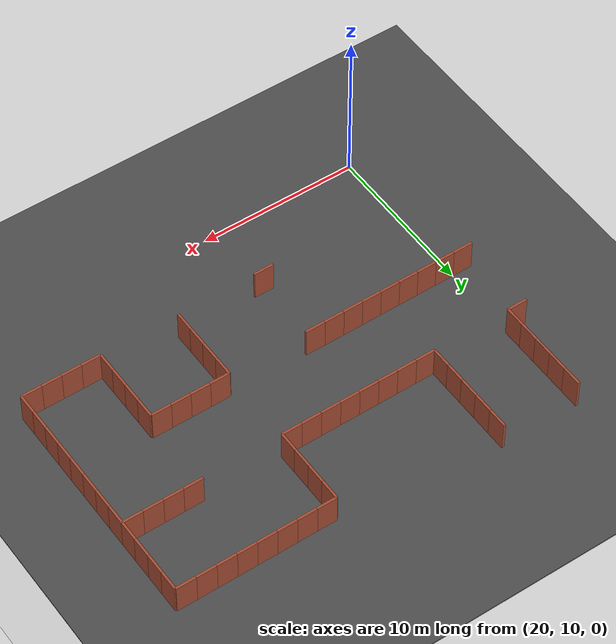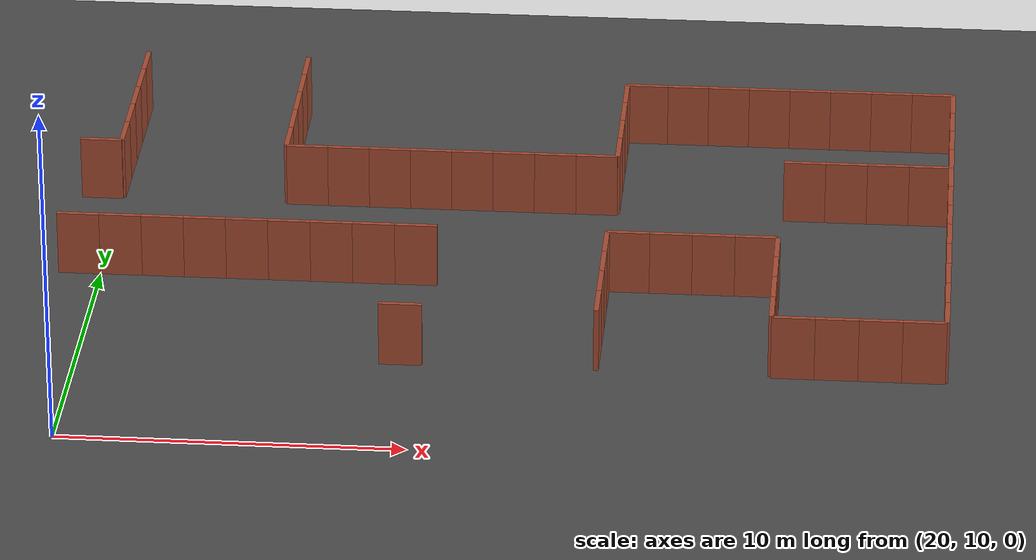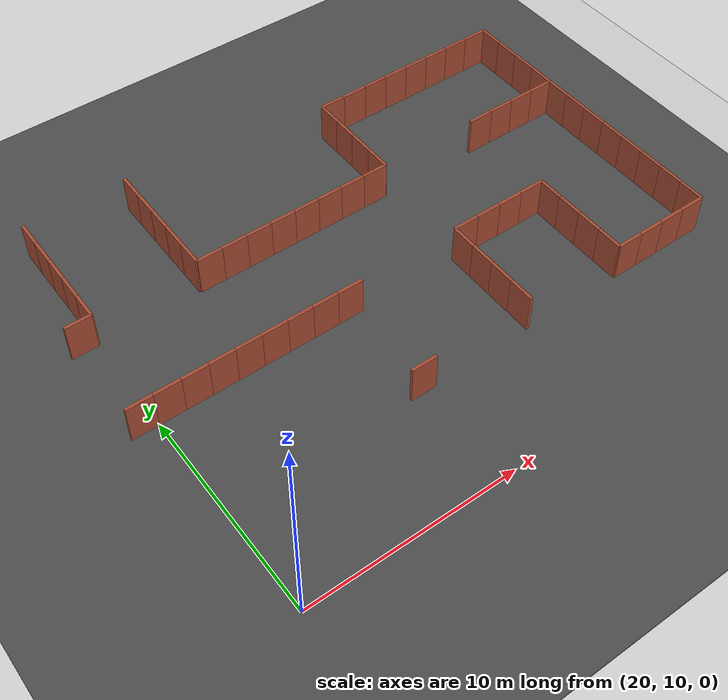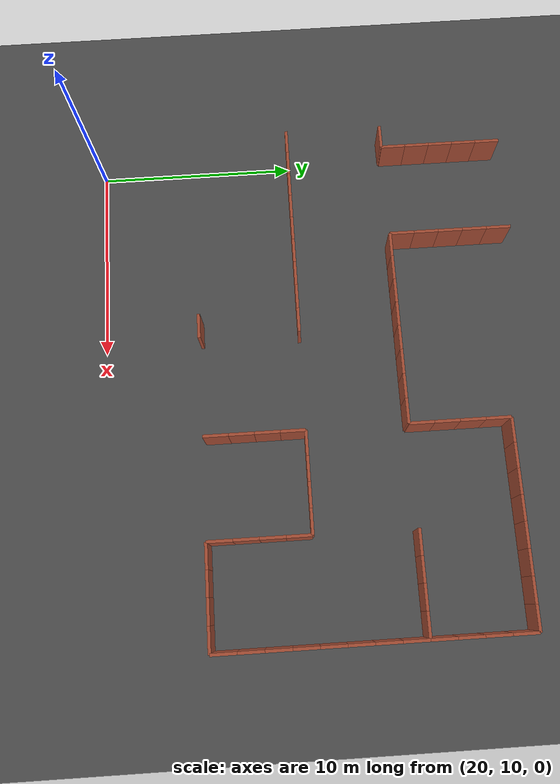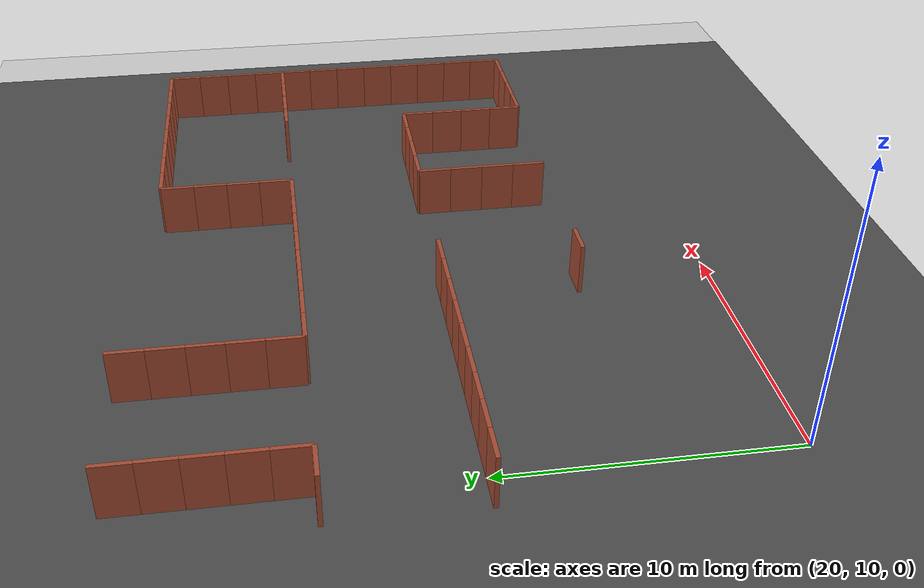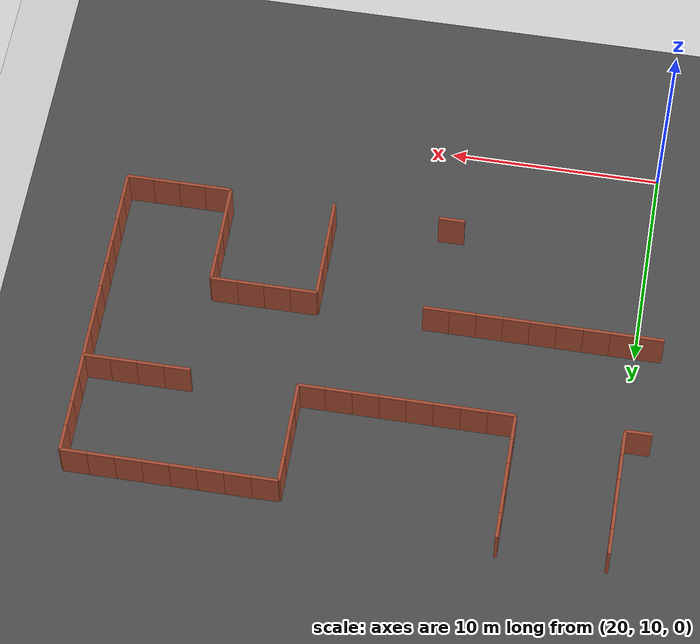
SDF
<sdf version="1.6">
 <world name="default">
  <model name="ground_plane">
   <static>1</static>
   <link name="link">
    <collision name="collision">
     <geometry><plane><normal>0 0 1</normal><size>100 100</size></plane></geometry>
     <surface><friction><ode><mu>100</mu><mu2>50</mu2></ode></friction></surface>
    </collision>
    <visual name="visual">
     <cast_shadows>0</cast_shadows>
     <geometry><plane><normal>0 0 1</normal><size>100 100</size></plane></geometry>
     <material>
      <script><uri>file://media/materials/scripts/gazebo.material</uri><name>Gazebo/Grey</name></script>
     </material>
    </visual>
   </link>
  </model>
  <model name="asphalt_plane">
   <static>1</static>
   <link name="link">
    <collision name="collision"><geometry><box><size>100 100 0.1</size></box></geometry></collision>
    <visual name="visual">
     <cast_shadows>0</cast_shadows>
     <geometry><box><size>100 100 0.1</size></box></geometry>
     <material>
      <script>
       <uri>model://asphalt_plane/materials/scripts</uri>
       <uri>model://asphalt_plane/materials/textures</uri>
       <name>vrc/asphalt</name>
      </script>
     </material>
    </visual>
   </link>
  </model>
  <model name="brick_wall_28_28_vertical1">
   <pose>20.625 20 0 0 -0 0</pose>
   <link name="Wall_0">
    <collision name="Wall_0_Collision">
     <geometry><box><size>1.25 0.15 2</size></box></geometry>
     <pose>0 0 1 0 -0 0</pose>
    </collision>
    <visual name="Wall_0_Visual">
     <pose>0 0 1 0 -0 0</pose>
     <geometry><box><size>1.25 0.15 2</size></box></geometry>
     <material>
      <script><uri>file://media/materials/scripts/gazebo.material</uri><name>Gazebo/Bricks</name></script>
      <ambient>1 1 1 1</ambient>
     </material>
     <meta><layer>0</layer></meta>
    </visual>
   </link>
   <static>1</static>
  </model>
  <model name="brick_wall_28_28_vertical2">
   <pose>19.375 20 0 0 -0 0</pose>
   <link name="Wall_0">
    <collision name="Wall_0_Collision">
     <geometry><box><size>1.25 0.15 2</size></box></geometry>
     <pose>0 0 1 0 -0 0</pose>
    </collision>
    <visual name="Wall_0_Visual">
     <pose>0 0 1 0 -0 0</pose>
     <geometry><box><size>1.25 0.15 2</size></box></geometry>
     <material>
      <script><uri>file://media/materials/scripts/gazebo.material</uri><name>Gazebo/Bricks</name></script>
      <ambient>1 1 1 1</ambient>
     </material>
     <meta><layer>0</layer></meta>
    </visual>
   </link>
   <static>1</static>
  </model>
  <model name="brick_wall_28_30_vertical2">
   <pose>19.375 25 0 0 -0 0</pose>
   <link name="Wall_0">
    <collision name="Wall_0_Collision">
     <geometry><box><size>1.25 0.15 2</size></box></geometry>
     <pose>0 0 1 0 -0 0</pose>
    </collision>
    <visual name="Wall_0_Visual">
     <pose>0 0 1 0 -0 0</pose>
     <geometry><box><size>1.25 0.15 2</size></box></geometry>
     <material>
      <script><uri>file://media/materials/scripts/gazebo.material</uri><name>Gazebo/Bricks</name></script>
      <ambient>1 1 1 1</ambient>
     </material>
     <meta><layer>0</layer></meta>
    </visual>
   </link>
   <static>1</static>
  </model>
  <model name="brick_wall_28_30_horizontal1">
   <pose>20 25.625 0 0 -0 1.5708</pose>
   <link name="Wall_0">
    <collision name="Wall_0_Collision">
     <geometry><box><size>1.25 0.15 2</size></box></geometry>
     <pose>0 0 1 0 -0 0</pose>
    </collision>
    <visual name="Wall_0_Visual">
     <pose>0 0 1 0 -0 0</pose>
     <geometry><box><size>1.25 0.15 2</size></box></geometry>
     <material>
      <script><uri>file://media/materials/scripts/gazebo.material</uri><name>Gazebo/Bricks</name></script>
      <ambient>1 1 1 1</ambient>
     </material>
     <meta><layer>0</layer></meta>
    </visual>
   </link>
   <static>1</static>
  </model>
  <model name="brick_wall_28_31_horizontal1">
   <pose>20 28.125 0 0 -0 1.5708</pose>
   <link name="Wall_0">
    <collision name="Wall_0_Collision">
     <geometry><box><size>1.25 0.15 2</size></box></geometry>
     <pose>0 0 1 0 -0 0</pose>
    </collision>
    <visual name="Wall_0_Visual">
     <pose>0 0 1 0 -0 0</pose>
     <geometry><box><size>1.25 0.15 2</size></box></geometry>
     <material>
      <script><uri>file://media/materials/scripts/gazebo.material</uri><name>Gazebo/Bricks</name></script>
      <ambient>1 1 1 1</ambient>
     </material>
     <meta><layer>0</layer></meta>
    </visual>
   </link>
   <static>1</static>
  </model>
  <model name="brick_wall_28_31_horizontal2">
   <pose>20 26.875 0 0 -0 1.5708</pose>
   <link name="Wall_0">
    <collision name="Wall_0_Collision">
     <geometry><box><size>1.25 0.15 2</size></box></geometry>
     <pose>0 0 1 0 -0 0</pose>
    </collision>
    <visual name="Wall_0_Visual">
     <pose>0 0 1 0 -0 0</pose>
     <geometry><box><size>1.25 0.15 2</size></box></geometry>
     <material>
      <script><uri>file://media/materials/scripts/gazebo.material</uri><name>Gazebo/Bricks</name></script>
      <ambient>1 1 1 1</ambient>
     </material>
     <meta><layer>0</layer></meta>
    </visual>
   </link>
   <static>1</static>
  </model>
  <model name="brick_wall_28_32_horizontal1">
   <pose>20 30.625 0 0 -0 1.5708</pose>
   <link name="Wall_0">
    <collision name="Wall_0_Collision">
     <geometry><box><size>1.25 0.15 2</size></box></geometry>
     <pose>0 0 1 0 -0 0</pose>
    </collision>
    <visual name="Wall_0_Visual">
     <pose>0 0 1 0 -0 0</pose>
     <geometry><box><size>1.25 0.15 2</size></box></geometry>
     <material>
      <script><uri>file://media/materials/scripts/gazebo.material</uri><name>Gazebo/Bricks</name></script>
      <ambient>1 1 1 1</ambient>
     </material>
     <meta><layer>0</layer></meta>
    </visual>
   </link>
   <static>1</static>
  </model>
  <model name="brick_wall_28_32_horizontal2">
   <pose>20 29.375 0 0 -0 1.5708</pose>
   <link name="Wall_0">
    <collision name="Wall_0_Collision">
     <geometry><box><size>1.25 0.15 2</size></box></geometry>
     <pose>0 0 1 0 -0 0</pose>
    </collision>
    <visual name="Wall_0_Visual">
     <pose>0 0 1 0 -0 0</pose>
     <geometry><box><size>1.25 0.15 2</size></box></geometry>
     <material>
      <script><uri>file://media/materials/scripts/gazebo.material</uri><name>Gazebo/Bricks</name></script>
      <ambient>1 1 1 1</ambient>
     </material>
     <meta><layer>0</layer></meta>
    </visual>
   </link>
   <static>1</static>
  </model>
  <model name="brick_wall_29_28_vertical1">
   <pose>23.125 20 0 0 -0 0</pose>
   <link name="Wall_0">
    <collision name="Wall_0_Collision">
     <geometry><box><size>1.25 0.15 2</size></box></geometry>
     <pose>0 0 1 0 -0 0</pose>
    </collision>
    <visual name="Wall_0_Visual">
     <pose>0 0 1 0 -0 0</pose>
     <geometry><box><size>1.25 0.15 2</size></box></geometry>
     <material>
      <script><uri>file://media/materials/scripts/gazebo.material</uri><name>Gazebo/Bricks</name></script>
      <ambient>1 1 1 1</ambient>
     </material>
     <meta><layer>0</layer></meta>
    </visual>
   </link>
   <static>1</static>
  </model>
  <model name="brick_wall_29_28_vertical2">
   <pose>21.875 20 0 0 -0 0</pose>
   <link name="Wall_0">
    <collision name="Wall_0_Collision">
     <geometry><box><size>1.25 0.15 2</size></box></geometry>
     <pose>0 0 1 0 -0 0</pose>
    </collision>
    <visual name="Wall_0_Visual">
     <pose>0 0 1 0 -0 0</pose>
     <geometry><box><size>1.25 0.15 2</size></box></geometry>
     <material>
      <script><uri>file://media/materials/scripts/gazebo.material</uri><name>Gazebo/Bricks</name></script>
      <ambient>1 1 1 1</ambient>
     </material>
     <meta><layer>0</layer></meta>
    </visual>
   </link>
   <static>1</static>
  </model>
  <model name="brick_wall_30_28_vertical1">
   <pose>25.625 20 0 0 -0 0</pose>
   <link name="Wall_0">
    <collision name="Wall_0_Collision">
     <geometry><box><size>1.25 0.15 2</size></box></geometry>
     <pose>0 0 1 0 -0 0</pose>
    </collision>
    <visual name="Wall_0_Visual">
     <pose>0 0 1 0 -0 0</pose>
     <geometry><box><size>1.25 0.15 2</size></box></geometry>
     <material>
      <script><uri>file://media/materials/scripts/gazebo.material</uri><name>Gazebo/Bricks</name></script>
      <ambient>1 1 1 1</ambient>
     </material>
     <meta><layer>0</layer></meta>
    </visual>
   </link>
   <static>1</static>
  </model>
  <model name="brick_wall_30_28_vertical2">
   <pose>24.375 20 0 0 -0 0</pose>
   <link name="Wall_0">
    <collision name="Wall_0_Collision">
     <geometry><box><size>1.25 0.15 2</size></box></geometry>
     <pose>0 0 1 0 -0 0</pose>
    </collision>
    <visual name="Wall_0_Visual">
     <pose>0 0 1 0 -0 0</pose>
     <geometry><box><size>1.25 0.15 2</size></box></geometry>
     <material>
      <script><uri>file://media/materials/scripts/gazebo.material</uri><name>Gazebo/Bricks</name></script>
      <ambient>1 1 1 1</ambient>
     </material>
     <meta><layer>0</layer></meta>
    </visual>
   </link>
   <static>1</static>
  </model>
  <model name="brick_wall_30_30_vertical1">
   <pose>25.625 25 0 0 -0 0</pose>
   <link name="Wall_0">
    <collision name="Wall_0_Collision">
     <geometry><box><size>1.25 0.15 2</size></box></geometry>
     <pose>0 0 1 0 -0 0</pose>
    </collision>
    <visual name="Wall_0_Visual">
     <pose>0 0 1 0 -0 0</pose>
     <geometry><box><size>1.25 0.15 2</size></box></geometry>
     <material>
      <script><uri>file://media/materials/scripts/gazebo.material</uri><name>Gazebo/Bricks</name></script>
      <ambient>1 1 1 1</ambient>
     </material>
     <meta><layer>0</layer></meta>
    </visual>
   </link>
   <static>1</static>
  </model>
  <model name="brick_wall_30_30_horizontal1">
   <pose>25 25.625 0 0 -0 1.5708</pose>
   <link name="Wall_0">
    <collision name="Wall_0_Collision">
     <geometry><box><size>1.25 0.15 2</size></box></geometry>
     <pose>0 0 1 0 -0 0</pose>
    </collision>
    <visual name="Wall_0_Visual">
     <pose>0 0 1 0 -0 0</pose>
     <geometry><box><size>1.25 0.15 2</size></box></geometry>
     <material>
      <script><uri>file://media/materials/scripts/gazebo.material</uri><name>Gazebo/Bricks</name></script>
      <ambient>1 1 1 1</ambient>
     </material>
     <meta><layer>0</layer></meta>
    </visual>
   </link>
   <static>1</static>
  </model>
  <model name="brick_wall_30_31_horizontal1">
   <pose>25 28.125 0 0 -0 1.5708</pose>
   <link name="Wall_0">
    <collision name="Wall_0_Collision">
     <geometry><box><size>1.25 0.15 2</size></box></geometry>
     <pose>0 0 1 0 -0 0</pose>
    </collision>
    <visual name="Wall_0_Visual">
     <pose>0 0 1 0 -0 0</pose>
     <geometry><box><size>1.25 0.15 2</size></box></geometry>
     <material>
      <script><uri>file://media/materials/scripts/gazebo.material</uri><name>Gazebo/Bricks</name></script>
      <ambient>1 1 1 1</ambient>
     </material>
     <meta><layer>0</layer></meta>
    </visual>
   </link>
   <static>1</static>
  </model>
  <model name="brick_wall_30_31_horizontal2">
   <pose>25 26.875 0 0 -0 1.5708</pose>
   <link name="Wall_0">
    <collision name="Wall_0_Collision">
     <geometry><box><size>1.25 0.15 2</size></box></geometry>
     <pose>0 0 1 0 -0 0</pose>
    </collision>
    <visual name="Wall_0_Visual">
     <pose>0 0 1 0 -0 0</pose>
     <geometry><box><size>1.25 0.15 2</size></box></geometry>
     <material>
      <script><uri>file://media/materials/scripts/gazebo.material</uri><name>Gazebo/Bricks</name></script>
      <ambient>1 1 1 1</ambient>
     </material>
     <meta><layer>0</layer></meta>
    </visual>
   </link>
   <static>1</static>
  </model>
  <model name="brick_wall_30_32_horizontal1">
   <pose>25 30.625 0 0 -0 1.5708</pose>
   <link name="Wall_0">
    <collision name="Wall_0_Collision">
     <geometry><box><size>1.25 0.15 2</size></box></geometry>
     <pose>0 0 1 0 -0 0</pose>
    </collision>
    <visual name="Wall_0_Visual">
     <pose>0 0 1 0 -0 0</pose>
     <geometry><box><size>1.25 0.15 2</size></box></geometry>
     <material>
      <script><uri>file://media/materials/scripts/gazebo.material</uri><name>Gazebo/Bricks</name></script>
      <ambient>1 1 1 1</ambient>
     </material>
     <meta><layer>0</layer></meta>
    </visual>
   </link>
   <static>1</static>
  </model>
  <model name="brick_wall_30_32_horizontal2">
   <pose>25 29.375 0 0 -0 1.5708</pose>
   <link name="Wall_0">
    <collision name="Wall_0_Collision">
     <geometry><box><size>1.25 0.15 2</size></box></geometry>
     <pose>0 0 1 0 -0 0</pose>
    </collision>
    <visual name="Wall_0_Visual">
     <pose>0 0 1 0 -0 0</pose>
     <geometry><box><size>1.25 0.15 2</size></box></geometry>
     <material>
      <script><uri>file://media/materials/scripts/gazebo.material</uri><name>Gazebo/Bricks</name></script>
      <ambient>1 1 1 1</ambient>
     </material>
     <meta><layer>0</layer></meta>
    </visual>
   </link>
   <static>1</static>
  </model>
  <model name="brick_wall_31_28_vertical1">
   <pose>28.125 20 0 0 -0 0</pose>
   <link name="Wall_0">
    <collision name="Wall_0_Collision">
     <geometry><box><size>1.25 0.15 2</size></box></geometry>
     <pose>0 0 1 0 -0 0</pose>
    </collision>
    <visual name="Wall_0_Visual">
     <pose>0 0 1 0 -0 0</pose>
     <geometry><box><size>1.25 0.15 2</size></box></geometry>
     <material>
      <script><uri>file://media/materials/scripts/gazebo.material</uri><name>Gazebo/Bricks</name></script>
      <ambient>1 1 1 1</ambient>
     </material>
     <meta><layer>0</layer></meta>
    </visual>
   </link>
   <static>1</static>
  </model>
  <model name="brick_wall_31_28_vertical2">
   <pose>26.875 20 0 0 -0 0</pose>
   <link name="Wall_0">
    <collision name="Wall_0_Collision">
     <geometry><box><size>1.25 0.15 2</size></box></geometry>
     <pose>0 0 1 0 -0 0</pose>
    </collision>
    <visual name="Wall_0_Visual">
     <pose>0 0 1 0 -0 0</pose>
     <geometry><box><size>1.25 0.15 2</size></box></geometry>
     <material>
      <script><uri>file://media/materials/scripts/gazebo.material</uri><name>Gazebo/Bricks</name></script>
      <ambient>1 1 1 1</ambient>
     </material>
     <meta><layer>0</layer></meta>
    </visual>
   </link>
   <static>1</static>
  </model>
  <model name="brick_wall_31_30_vertical1">
   <pose>28.125 25 0 0 -0 0</pose>
   <link name="Wall_0">
    <collision name="Wall_0_Collision">
     <geometry><box><size>1.25 0.15 2</size></box></geometry>
     <pose>0 0 1 0 -0 0</pose>
    </collision>
    <visual name="Wall_0_Visual">
     <pose>0 0 1 0 -0 0</pose>
     <geometry><box><size>1.25 0.15 2</size></box></geometry>
     <material>
      <script><uri>file://media/materials/scripts/gazebo.material</uri><name>Gazebo/Bricks</name></script>
      <ambient>1 1 1 1</ambient>
     </material>
     <meta><layer>0</layer></meta>
    </visual>
   </link>
   <static>1</static>
  </model>
  <model name="brick_wall_31_30_vertical2">
   <pose>26.875 25 0 0 -0 0</pose>
   <link name="Wall_0">
    <collision name="Wall_0_Collision">
     <geometry><box><size>1.25 0.15 2</size></box></geometry>
     <pose>0 0 1 0 -0 0</pose>
    </collision>
    <visual name="Wall_0_Visual">
     <pose>0 0 1 0 -0 0</pose>
     <geometry><box><size>1.25 0.15 2</size></box></geometry>
     <material>
      <script><uri>file://media/materials/scripts/gazebo.material</uri><name>Gazebo/Bricks</name></script>
      <ambient>1 1 1 1</ambient>
     </material>
     <meta><layer>0</layer></meta>
    </visual>
   </link>
   <static>1</static>
  </model>
  <model name="brick_wall_32_26_vertical2">
   <pose>29.375 15 0 0 -0 0</pose>
   <link name="Wall_0">
    <collision name="Wall_0_Collision">
     <geometry><box><size>1.25 0.15 2</size></box></geometry>
     <pose>0 0 1 0 -0 0</pose>
    </collision>
    <visual name="Wall_0_Visual">
     <pose>0 0 1 0 -0 0</pose>
     <geometry><box><size>1.25 0.15 2</size></box></geometry>
     <material>
      <script><uri>file://media/materials/scripts/gazebo.material</uri><name>Gazebo/Bricks</name></script>
      <ambient>1 1 1 1</ambient>
     </material>
     <meta><layer>0</layer></meta>
    </visual>
   </link>
   <static>1</static>
  </model>
  <model name="brick_wall_32_28_vertical2">
   <pose>29.375 20 0 0 -0 0</pose>
   <link name="Wall_0">
    <collision name="Wall_0_Collision">
     <geometry><box><size>1.25 0.15 2</size></box></geometry>
     <pose>0 0 1 0 -0 0</pose>
    </collision>
    <visual name="Wall_0_Visual">
     <pose>0 0 1 0 -0 0</pose>
     <geometry><box><size>1.25 0.15 2</size></box></geometry>
     <material>
      <script><uri>file://media/materials/scripts/gazebo.material</uri><name>Gazebo/Bricks</name></script>
      <ambient>1 1 1 1</ambient>
     </material>
     <meta><layer>0</layer></meta>
    </visual>
   </link>
   <static>1</static>
  </model>
  <model name="brick_wall_32_30_vertical1">
   <pose>30.625 25 0 0 -0 0</pose>
   <link name="Wall_0">
    <collision name="Wall_0_Collision">
     <geometry><box><size>1.25 0.15 2</size></box></geometry>
     <pose>0 0 1 0 -0 0</pose>
    </collision>
    <visual name="Wall_0_Visual">
     <pose>0 0 1 0 -0 0</pose>
     <geometry><box><size>1.25 0.15 2</size></box></geometry>
     <material>
      <script><uri>file://media/materials/scripts/gazebo.material</uri><name>Gazebo/Bricks</name></script>
      <ambient>1 1 1 1</ambient>
     </material>
     <meta><layer>0</layer></meta>
    </visual>
   </link>
   <static>1</static>
  </model>
  <model name="brick_wall_32_30_vertical2">
   <pose>29.375 25 0 0 -0 0</pose>
   <link name="Wall_0">
    <collision name="Wall_0_Collision">
     <geometry><box><size>1.25 0.15 2</size></box></geometry>
     <pose>0 0 1 0 -0 0</pose>
    </collision>
    <visual name="Wall_0_Visual">
     <pose>0 0 1 0 -0 0</pose>
     <geometry><box><size>1.25 0.15 2</size></box></geometry>
     <material>
      <script><uri>file://media/materials/scripts/gazebo.material</uri><name>Gazebo/Bricks</name></script>
      <ambient>1 1 1 1</ambient>
     </material>
     <meta><layer>0</layer></meta>
    </visual>
   </link>
   <static>1</static>
  </model>
  <model name="brick_wall_33_30_vertical1">
   <pose>33.125 25 0 0 -0 0</pose>
   <link name="Wall_0">
    <collision name="Wall_0_Collision">
     <geometry><box><size>1.25 0.15 2</size></box></geometry>
     <pose>0 0 1 0 -0 0</pose>
    </collision>
    <visual name="Wall_0_Visual">
     <pose>0 0 1 0 -0 0</pose>
     <geometry><box><size>1.25 0.15 2</size></box></geometry>
     <material>
      <script><uri>file://media/materials/scripts/gazebo.material</uri><name>Gazebo/Bricks</name></script>
      <ambient>1 1 1 1</ambient>
     </material>
     <meta><layer>0</layer></meta>
    </visual>
   </link>
   <static>1</static>
  </model>
  <model name="brick_wall_33_30_vertical2">
   <pose>31.875 25 0 0 -0 0</pose>
   <link name="Wall_0">
    <collision name="Wall_0_Collision">
     <geometry><box><size>1.25 0.15 2</size></box></geometry>
     <pose>0 0 1 0 -0 0</pose>
    </collision>
    <visual name="Wall_0_Visual">
     <pose>0 0 1 0 -0 0</pose>
     <geometry><box><size>1.25 0.15 2</size></box></geometry>
     <material>
      <script><uri>file://media/materials/scripts/gazebo.material</uri><name>Gazebo/Bricks</name></script>
      <ambient>1 1 1 1</ambient>
     </material>
     <meta><layer>0</layer></meta>
    </visual>
   </link>
   <static>1</static>
  </model>
  <model name="brick_wall_34_26_horizontal1">
   <pose>35 15.625 0 0 -0 1.5708</pose>
   <link name="Wall_0">
    <collision name="Wall_0_Collision">
     <geometry><box><size>1.25 0.15 2</size></box></geometry>
     <pose>0 0 1 0 -0 0</pose>
    </collision>
    <visual name="Wall_0_Visual">
     <pose>0 0 1 0 -0 0</pose>
     <geometry><box><size>1.25 0.15 2</size></box></geometry>
     <material>
      <script><uri>file://media/materials/scripts/gazebo.material</uri><name>Gazebo/Bricks</name></script>
      <ambient>1 1 1 1</ambient>
     </material>
     <meta><layer>0</layer></meta>
    </visual>
   </link>
   <static>1</static>
  </model>
  <model name="brick_wall_34_27_horizontal1">
   <pose>35 18.125 0 0 -0 1.5708</pose>
   <link name="Wall_0">
    <collision name="Wall_0_Collision">
     <geometry><box><size>1.25 0.15 2</size></box></geometry>
     <pose>0 0 1 0 -0 0</pose>
    </collision>
    <visual name="Wall_0_Visual">
     <pose>0 0 1 0 -0 0</pose>
     <geometry><box><size>1.25 0.15 2</size></box></geometry>
     <material>
      <script><uri>file://media/materials/scripts/gazebo.material</uri><name>Gazebo/Bricks</name></script>
      <ambient>1 1 1 1</ambient>
     </material>
     <meta><layer>0</layer></meta>
    </visual>
   </link>
   <static>1</static>
  </model>
  <model name="brick_wall_34_27_horizontal2">
   <pose>35 16.875 0 0 -0 1.5708</pose>
   <link name="Wall_0">
    <collision name="Wall_0_Collision">
     <geometry><box><size>1.25 0.15 2</size></box></geometry>
     <pose>0 0 1 0 -0 0</pose>
    </collision>
    <visual name="Wall_0_Visual">
     <pose>0 0 1 0 -0 0</pose>
     <geometry><box><size>1.25 0.15 2</size></box></geometry>
     <material>
      <script><uri>file://media/materials/scripts/gazebo.material</uri><name>Gazebo/Bricks</name></script>
      <ambient>1 1 1 1</ambient>
     </material>
     <meta><layer>0</layer></meta>
    </visual>
   </link>
   <static>1</static>
  </model>
  <model name="brick_wall_34_28_vertical1">
   <pose>35.625 20 0 0 -0 0</pose>
   <link name="Wall_0">
    <collision name="Wall_0_Collision">
     <geometry><box><size>1.25 0.15 2</size></box></geometry>
     <pose>0 0 1 0 -0 0</pose>
    </collision>
    <visual name="Wall_0_Visual">
     <pose>0 0 1 0 -0 0</pose>
     <geometry><box><size>1.25 0.15 2</size></box></geometry>
     <material>
      <script><uri>file://media/materials/scripts/gazebo.material</uri><name>Gazebo/Bricks</name></script>
      <ambient>1 1 1 1</ambient>
     </material>
     <meta><layer>0</layer></meta>
    </visual>
   </link>
   <static>1</static>
  </model>
  <model name="brick_wall_34_28_horizontal2">
   <pose>35 19.375 0 0 -0 1.5708</pose>
   <link name="Wall_0">
    <collision name="Wall_0_Collision">
     <geometry><box><size>1.25 0.15 2</size></box></geometry>
     <pose>0 0 1 0 -0 0</pose>
    </collision>
    <visual name="Wall_0_Visual">
     <pose>0 0 1 0 -0 0</pose>
     <geometry><box><size>1.25 0.15 2</size></box></geometry>
     <material>
      <script><uri>file://media/materials/scripts/gazebo.material</uri><name>Gazebo/Bricks</name></script>
      <ambient>1 1 1 1</ambient>
     </material>
     <meta><layer>0</layer></meta>
    </visual>
   </link>
   <static>1</static>
  </model>
  <model name="brick_wall_34_30_vertical2">
   <pose>34.375 25 0 0 -0 0</pose>
   <link name="Wall_0">
    <collision name="Wall_0_Collision">
     <geometry><box><size>1.25 0.15 2</size></box></geometry>
     <pose>0 0 1 0 -0 0</pose>
    </collision>
    <visual name="Wall_0_Visual">
     <pose>0 0 1 0 -0 0</pose>
     <geometry><box><size>1.25 0.15 2</size></box></geometry>
     <material>
      <script><uri>file://media/materials/scripts/gazebo.material</uri><name>Gazebo/Bricks</name></script>
      <ambient>1 1 1 1</ambient>
     </material>
     <meta><layer>0</layer></meta>
    </visual>
   </link>
   <static>1</static>
  </model>
  <model name="brick_wall_34_30_horizontal1">
   <pose>35 25.625 0 0 -0 1.5708</pose>
   <link name="Wall_0">
    <collision name="Wall_0_Collision">
     <geometry><box><size>1.25 0.15 2</size></box></geometry>
     <pose>0 0 1 0 -0 0</pose>
    </collision>
    <visual name="Wall_0_Visual">
     <pose>0 0 1 0 -0 0</pose>
     <geometry><box><size>1.25 0.15 2</size></box></geometry>
     <material>
      <script><uri>file://media/materials/scripts/gazebo.material</uri><name>Gazebo/Bricks</name></script>
      <ambient>1 1 1 1</ambient>
     </material>
     <meta><layer>0</layer></meta>
    </visual>
   </link>
   <static>1</static>
  </model>
  <model name="brick_wall_34_31_horizontal1">
   <pose>35 28.125 0 0 -0 1.5708</pose>
   <link name="Wall_0">
    <collision name="Wall_0_Collision">
     <geometry><box><size>1.25 0.15 2</size></box></geometry>
     <pose>0 0 1 0 -0 0</pose>
    </collision>
    <visual name="Wall_0_Visual">
     <pose>0 0 1 0 -0 0</pose>
     <geometry><box><size>1.25 0.15 2</size></box></geometry>
     <material>
      <script><uri>file://media/materials/scripts/gazebo.material</uri><name>Gazebo/Bricks</name></script>
      <ambient>1 1 1 1</ambient>
     </material>
     <meta><layer>0</layer></meta>
    </visual>
   </link>
   <static>1</static>
  </model>
  <model name="brick_wall_34_31_horizontal2">
   <pose>35 26.875 0 0 -0 1.5708</pose>
   <link name="Wall_0">
    <collision name="Wall_0_Collision">
     <geometry><box><size>1.25 0.15 2</size></box></geometry>
     <pose>0 0 1 0 -0 0</pose>
    </collision>
    <visual name="Wall_0_Visual">
     <pose>0 0 1 0 -0 0</pose>
     <geometry><box><size>1.25 0.15 2</size></box></geometry>
     <material>
      <script><uri>file://media/materials/scripts/gazebo.material</uri><name>Gazebo/Bricks</name></script>
      <ambient>1 1 1 1</ambient>
     </material>
     <meta><layer>0</layer></meta>
    </visual>
   </link>
   <static>1</static>
  </model>
  <model name="brick_wall_34_32_vertical1">
   <pose>35.625 30 0 0 -0 0</pose>
   <link name="Wall_0">
    <collision name="Wall_0_Collision">
     <geometry><box><size>1.25 0.15 2</size></box></geometry>
     <pose>0 0 1 0 -0 0</pose>
    </collision>
    <visual name="Wall_0_Visual">
     <pose>0 0 1 0 -0 0</pose>
     <geometry><box><size>1.25 0.15 2</size></box></geometry>
     <material>
      <script><uri>file://media/materials/scripts/gazebo.material</uri><name>Gazebo/Bricks</name></script>
      <ambient>1 1 1 1</ambient>
     </material>
     <meta><layer>0</layer></meta>
    </visual>
   </link>
   <static>1</static>
  </model>
  <model name="brick_wall_34_32_horizontal2">
   <pose>35 29.375 0 0 -0 1.5708</pose>
   <link name="Wall_0">
    <collision name="Wall_0_Collision">
     <geometry><box><size>1.25 0.15 2</size></box></geometry>
     <pose>0 0 1 0 -0 0</pose>
    </collision>
    <visual name="Wall_0_Visual">
     <pose>0 0 1 0 -0 0</pose>
     <geometry><box><size>1.25 0.15 2</size></box></geometry>
     <material>
      <script><uri>file://media/materials/scripts/gazebo.material</uri><name>Gazebo/Bricks</name></script>
      <ambient>1 1 1 1</ambient>
     </material>
     <meta><layer>0</layer></meta>
    </visual>
   </link>
   <static>1</static>
  </model>
  <model name="brick_wall_35_28_vertical1">
   <pose>38.125 20 0 0 -0 0</pose>
   <link name="Wall_0">
    <collision name="Wall_0_Collision">
     <geometry><box><size>1.25 0.15 2</size></box></geometry>
     <pose>0 0 1 0 -0 0</pose>
    </collision>
    <visual name="Wall_0_Visual">
     <pose>0 0 1 0 -0 0</pose>
     <geometry><box><size>1.25 0.15 2</size></box></geometry>
     <material>
      <script><uri>file://media/materials/scripts/gazebo.material</uri><name>Gazebo/Bricks</name></script>
      <ambient>1 1 1 1</ambient>
     </material>
     <meta><layer>0</layer></meta>
    </visual>
   </link>
   <static>1</static>
  </model>
  <model name="brick_wall_35_28_vertical2">
   <pose>36.875 20 0 0 -0 0</pose>
   <link name="Wall_0">
    <collision name="Wall_0_Collision">
     <geometry><box><size>1.25 0.15 2</size></box></geometry>
     <pose>0 0 1 0 -0 0</pose>
    </collision>
    <visual name="Wall_0_Visual">
     <pose>0 0 1 0 -0 0</pose>
     <geometry><box><size>1.25 0.15 2</size></box></geometry>
     <material>
      <script><uri>file://media/materials/scripts/gazebo.material</uri><name>Gazebo/Bricks</name></script>
      <ambient>1 1 1 1</ambient>
     </material>
     <meta><layer>0</layer></meta>
    </visual>
   </link>
   <static>1</static>
  </model>
  <model name="brick_wall_35_32_vertical1">
   <pose>38.125 30 0 0 -0 0</pose>
   <link name="Wall_0">
    <collision name="Wall_0_Collision">
     <geometry><box><size>1.25 0.15 2</size></box></geometry>
     <pose>0 0 1 0 -0 0</pose>
    </collision>
    <visual name="Wall_0_Visual">
     <pose>0 0 1 0 -0 0</pose>
     <geometry><box><size>1.25 0.15 2</size></box></geometry>
     <material>
      <script><uri>file://media/materials/scripts/gazebo.material</uri><name>Gazebo/Bricks</name></script>
      <ambient>1 1 1 1</ambient>
     </material>
     <meta><layer>0</layer></meta>
    </visual>
   </link>
   <static>1</static>
  </model>
  <model name="brick_wall_35_32_vertical2">
   <pose>36.875 30 0 0 -0 0</pose>
   <link name="Wall_0">
    <collision name="Wall_0_Collision">
     <geometry><box><size>1.25 0.15 2</size></box></geometry>
     <pose>0 0 1 0 -0 0</pose>
    </collision>
    <visual name="Wall_0_Visual">
     <pose>0 0 1 0 -0 0</pose>
     <geometry><box><size>1.25 0.15 2</size></box></geometry>
     <material>
      <script><uri>file://media/materials/scripts/gazebo.material</uri><name>Gazebo/Bricks</name></script>
      <ambient>1 1 1 1</ambient>
     </material>
     <meta><layer>0</layer></meta>
    </visual>
   </link>
   <static>1</static>
  </model>
  <model name="brick_wall_36_26_vertical1">
   <pose>40.625 15 0 0 -0 0</pose>
   <link name="Wall_0">
    <collision name="Wall_0_Collision">
     <geometry><box><size>1.25 0.15 2</size></box></geometry>
     <pose>0 0 1 0 -0 0</pose>
    </collision>
    <visual name="Wall_0_Visual">
     <pose>0 0 1 0 -0 0</pose>
     <geometry><box><size>1.25 0.15 2</size></box></geometry>
     <material>
      <script><uri>file://media/materials/scripts/gazebo.material</uri><name>Gazebo/Bricks</name></script>
      <ambient>1 1 1 1</ambient>
     </material>
     <meta><layer>0</layer></meta>
    </visual>
   </link>
   <static>1</static>
  </model>
  <model name="brick_wall_36_26_horizontal1">
   <pose>40 15.625 0 0 -0 1.5708</pose>
   <link name="Wall_0">
    <collision name="Wall_0_Collision">
     <geometry><box><size>1.25 0.15 2</size></box></geometry>
     <pose>0 0 1 0 -0 0</pose>
    </collision>
    <visual name="Wall_0_Visual">
     <pose>0 0 1 0 -0 0</pose>
     <geometry><box><size>1.25 0.15 2</size></box></geometry>
     <material>
      <script><uri>file://media/materials/scripts/gazebo.material</uri><name>Gazebo/Bricks</name></script>
      <ambient>1 1 1 1</ambient>
     </material>
     <meta><layer>0</layer></meta>
    </visual>
   </link>
   <static>1</static>
  </model>
  <model name="brick_wall_36_27_horizontal1">
   <pose>40 18.125 0 0 -0 1.5708</pose>
   <link name="Wall_0">
    <collision name="Wall_0_Collision">
     <geometry><box><size>1.25 0.15 2</size></box></geometry>
     <pose>0 0 1 0 -0 0</pose>
    </collision>
    <visual name="Wall_0_Visual">
     <pose>0 0 1 0 -0 0</pose>
     <geometry><box><size>1.25 0.15 2</size></box></geometry>
     <material>
      <script><uri>file://media/materials/scripts/gazebo.material</uri><name>Gazebo/Bricks</name></script>
      <ambient>1 1 1 1</ambient>
     </material>
     <meta><layer>0</layer></meta>
    </visual>
   </link>
   <static>1</static>
  </model>
  <model name="brick_wall_36_27_horizontal2">
   <pose>40 16.875 0 0 -0 1.5708</pose>
   <link name="Wall_0">
    <collision name="Wall_0_Collision">
     <geometry><box><size>1.25 0.15 2</size></box></geometry>
     <pose>0 0 1 0 -0 0</pose>
    </collision>
    <visual name="Wall_0_Visual">
     <pose>0 0 1 0 -0 0</pose>
     <geometry><box><size>1.25 0.15 2</size></box></geometry>
     <material>
      <script><uri>file://media/materials/scripts/gazebo.material</uri><name>Gazebo/Bricks</name></script>
      <ambient>1 1 1 1</ambient>
     </material>
     <meta><layer>0</layer></meta>
    </visual>
   </link>
   <static>1</static>
  </model>
  <model name="brick_wall_36_28_vertical2">
   <pose>39.375 20 0 0 -0 0</pose>
   <link name="Wall_0">
    <collision name="Wall_0_Collision">
     <geometry><box><size>1.25 0.15 2</size></box></geometry>
     <pose>0 0 1 0 -0 0</pose>
    </collision>
    <visual name="Wall_0_Visual">
     <pose>0 0 1 0 -0 0</pose>
     <geometry><box><size>1.25 0.15 2</size></box></geometry>
     <material>
      <script><uri>file://media/materials/scripts/gazebo.material</uri><name>Gazebo/Bricks</name></script>
      <ambient>1 1 1 1</ambient>
     </material>
     <meta><layer>0</layer></meta>
    </visual>
   </link>
   <static>1</static>
  </model>
  <model name="brick_wall_36_28_horizontal2">
   <pose>40 19.375 0 0 -0 1.5708</pose>
   <link name="Wall_0">
    <collision name="Wall_0_Collision">
     <geometry><box><size>1.25 0.15 2</size></box></geometry>
     <pose>0 0 1 0 -0 0</pose>
    </collision>
    <visual name="Wall_0_Visual">
     <pose>0 0 1 0 -0 0</pose>
     <geometry><box><size>1.25 0.15 2</size></box></geometry>
     <material>
      <script><uri>file://media/materials/scripts/gazebo.material</uri><name>Gazebo/Bricks</name></script>
      <ambient>1 1 1 1</ambient>
     </material>
     <meta><layer>0</layer></meta>
    </visual>
   </link>
   <static>1</static>
  </model>
  <model name="brick_wall_36_30_vertical1">
   <pose>40.625 25 0 0 -0 0</pose>
   <link name="Wall_0">
    <collision name="Wall_0_Collision">
     <geometry><box><size>1.25 0.15 2</size></box></geometry>
     <pose>0 0 1 0 -0 0</pose>
    </collision>
    <visual name="Wall_0_Visual">
     <pose>0 0 1 0 -0 0</pose>
     <geometry><box><size>1.25 0.15 2</size></box></geometry>
     <material>
      <script><uri>file://media/materials/scripts/gazebo.material</uri><name>Gazebo/Bricks</name></script>
      <ambient>1 1 1 1</ambient>
     </material>
     <meta><layer>0</layer></meta>
    </visual>
   </link>
   <static>1</static>
  </model>
  <model name="brick_wall_36_32_vertical1">
   <pose>40.625 30 0 0 -0 0</pose>
   <link name="Wall_0">
    <collision name="Wall_0_Collision">
     <geometry><box><size>1.25 0.15 2</size></box></geometry>
     <pose>0 0 1 0 -0 0</pose>
    </collision>
    <visual name="Wall_0_Visual">
     <pose>0 0 1 0 -0 0</pose>
     <geometry><box><size>1.25 0.15 2</size></box></geometry>
     <material>
      <script><uri>file://media/materials/scripts/gazebo.material</uri><name>Gazebo/Bricks</name></script>
      <ambient>1 1 1 1</ambient>
     </material>
     <meta><layer>0</layer></meta>
    </visual>
   </link>
   <static>1</static>
  </model>
  <model name="brick_wall_36_32_vertical2">
   <pose>39.375 30 0 0 -0 0</pose>
   <link name="Wall_0">
    <collision name="Wall_0_Collision">
     <geometry><box><size>1.25 0.15 2</size></box></geometry>
     <pose>0 0 1 0 -0 0</pose>
    </collision>
    <visual name="Wall_0_Visual">
     <pose>0 0 1 0 -0 0</pose>
     <geometry><box><size>1.25 0.15 2</size></box></geometry>
     <material>
      <script><uri>file://media/materials/scripts/gazebo.material</uri><name>Gazebo/Bricks</name></script>
      <ambient>1 1 1 1</ambient>
     </material>
     <meta><layer>0</layer></meta>
    </visual>
   </link>
   <static>1</static>
  </model>
  <model name="brick_wall_37_26_vertical1">
   <pose>43.125 15 0 0 -0 0</pose>
   <link name="Wall_0">
    <collision name="Wall_0_Collision">
     <geometry><box><size>1.25 0.15 2</size></box></geometry>
     <pose>0 0 1 0 -0 0</pose>
    </collision>
    <visual name="Wall_0_Visual">
     <pose>0 0 1 0 -0 0</pose>
     <geometry><box><size>1.25 0.15 2</size></box></geometry>
     <material>
      <script><uri>file://media/materials/scripts/gazebo.material</uri><name>Gazebo/Bricks</name></script>
      <ambient>1 1 1 1</ambient>
     </material>
     <meta><layer>0</layer></meta>
    </visual>
   </link>
   <static>1</static>
  </model>
  <model name="brick_wall_37_26_vertical2">
   <pose>41.875 15 0 0 -0 0</pose>
   <link name="Wall_0">
    <collision name="Wall_0_Collision">
     <geometry><box><size>1.25 0.15 2</size></box></geometry>
     <pose>0 0 1 0 -0 0</pose>
    </collision>
    <visual name="Wall_0_Visual">
     <pose>0 0 1 0 -0 0</pose>
     <geometry><box><size>1.25 0.15 2</size></box></geometry>
     <material>
      <script><uri>file://media/materials/scripts/gazebo.material</uri><name>Gazebo/Bricks</name></script>
      <ambient>1 1 1 1</ambient>
     </material>
     <meta><layer>0</layer></meta>
    </visual>
   </link>
   <static>1</static>
  </model>
  <model name="brick_wall_37_30_vertical1">
   <pose>43.125 25 0 0 -0 0</pose>
   <link name="Wall_0">
    <collision name="Wall_0_Collision">
     <geometry><box><size>1.25 0.15 2</size></box></geometry>
     <pose>0 0 1 0 -0 0</pose>
    </collision>
    <visual name="Wall_0_Visual">
     <pose>0 0 1 0 -0 0</pose>
     <geometry><box><size>1.25 0.15 2</size></box></geometry>
     <material>
      <script><uri>file://media/materials/scripts/gazebo.material</uri><name>Gazebo/Bricks</name></script>
      <ambient>1 1 1 1</ambient>
     </material>
     <meta><layer>0</layer></meta>
    </visual>
   </link>
   <static>1</static>
  </model>
  <model name="brick_wall_37_30_vertical2">
   <pose>41.875 25 0 0 -0 0</pose>
   <link name="Wall_0">
    <collision name="Wall_0_Collision">
     <geometry><box><size>1.25 0.15 2</size></box></geometry>
     <pose>0 0 1 0 -0 0</pose>
    </collision>
    <visual name="Wall_0_Visual">
     <pose>0 0 1 0 -0 0</pose>
     <geometry><box><size>1.25 0.15 2</size></box></geometry>
     <material>
      <script><uri>file://media/materials/scripts/gazebo.material</uri><name>Gazebo/Bricks</name></script>
      <ambient>1 1 1 1</ambient>
     </material>
     <meta><layer>0</layer></meta>
    </visual>
   </link>
   <static>1</static>
  </model>
  <model name="brick_wall_37_32_vertical1">
   <pose>43.125 30 0 0 -0 0</pose>
   <link name="Wall_0">
    <collision name="Wall_0_Collision">
     <geometry><box><size>1.25 0.15 2</size></box></geometry>
     <pose>0 0 1 0 -0 0</pose>
    </collision>
    <visual name="Wall_0_Visual">
     <pose>0 0 1 0 -0 0</pose>
     <geometry><box><size>1.25 0.15 2</size></box></geometry>
     <material>
      <script><uri>file://media/materials/scripts/gazebo.material</uri><name>Gazebo/Bricks</name></script>
      <ambient>1 1 1 1</ambient>
     </material>
     <meta><layer>0</layer></meta>
    </visual>
   </link>
   <static>1</static>
  </model>
  <model name="brick_wall_37_32_vertical2">
   <pose>41.875 30 0 0 -0 0</pose>
   <link name="Wall_0">
    <collision name="Wall_0_Collision">
     <geometry><box><size>1.25 0.15 2</size></box></geometry>
     <pose>0 0 1 0 -0 0</pose>
    </collision>
    <visual name="Wall_0_Visual">
     <pose>0 0 1 0 -0 0</pose>
     <geometry><box><size>1.25 0.15 2</size></box></geometry>
     <material>
      <script><uri>file://media/materials/scripts/gazebo.material</uri><name>Gazebo/Bricks</name></script>
      <ambient>1 1 1 1</ambient>
     </material>
     <meta><layer>0</layer></meta>
    </visual>
   </link>
   <static>1</static>
  </model>
  <model name="brick_wall_38_26_vertical2">
   <pose>44.375 15 0 0 -0 0</pose>
   <link name="Wall_0">
    <collision name="Wall_0_Collision">
     <geometry><box><size>1.25 0.15 2</size></box></geometry>
     <pose>0 0 1 0 -0 0</pose>
    </collision>
    <visual name="Wall_0_Visual">
     <pose>0 0 1 0 -0 0</pose>
     <geometry><box><size>1.25 0.15 2</size></box></geometry>
     <material>
      <script><uri>file://media/materials/scripts/gazebo.material</uri><name>Gazebo/Bricks</name></script>
      <ambient>1 1 1 1</ambient>
     </material>
     <meta><layer>0</layer></meta>
    </visual>
   </link>
   <static>1</static>
  </model>
  <model name="brick_wall_38_26_horizontal1">
   <pose>45 15.625 0 0 -0 1.5708</pose>
   <link name="Wall_0">
    <collision name="Wall_0_Collision">
     <geometry><box><size>1.25 0.15 2</size></box></geometry>
     <pose>0 0 1 0 -0 0</pose>
    </collision>
    <visual name="Wall_0_Visual">
     <pose>0 0 1 0 -0 0</pose>
     <geometry><box><size>1.25 0.15 2</size></box></geometry>
     <material>
      <script><uri>file://media/materials/scripts/gazebo.material</uri><name>Gazebo/Bricks</name></script>
      <ambient>1 1 1 1</ambient>
     </material>
     <meta><layer>0</layer></meta>
    </visual>
   </link>
   <static>1</static>
  </model>
  <model name="brick_wall_38_27_horizontal1">
   <pose>45 18.125 0 0 -0 1.5708</pose>
   <link name="Wall_0">
    <collision name="Wall_0_Collision">
     <geometry><box><size>1.25 0.15 2</size></box></geometry>
     <pose>0 0 1 0 -0 0</pose>
    </collision>
    <visual name="Wall_0_Visual">
     <pose>0 0 1 0 -0 0</pose>
     <geometry><box><size>1.25 0.15 2</size></box></geometry>
     <material>
      <script><uri>file://media/materials/scripts/gazebo.material</uri><name>Gazebo/Bricks</name></script>
      <ambient>1 1 1 1</ambient>
     </material>
     <meta><layer>0</layer></meta>
    </visual>
   </link>
   <static>1</static>
  </model>
  <model name="brick_wall_38_27_horizontal2">
   <pose>45 16.875 0 0 -0 1.5708</pose>
   <link name="Wall_0">
    <collision name="Wall_0_Collision">
     <geometry><box><size>1.25 0.15 2</size></box></geometry>
     <pose>0 0 1 0 -0 0</pose>
    </collision>
    <visual name="Wall_0_Visual">
     <pose>0 0 1 0 -0 0</pose>
     <geometry><box><size>1.25 0.15 2</size></box></geometry>
     <material>
      <script><uri>file://media/materials/scripts/gazebo.material</uri><name>Gazebo/Bricks</name></script>
      <ambient>1 1 1 1</ambient>
     </material>
     <meta><layer>0</layer></meta>
    </visual>
   </link>
   <static>1</static>
  </model>
  <model name="brick_wall_38_28_horizontal1">
   <pose>45 20.625 0 0 -0 1.5708</pose>
   <link name="Wall_0">
    <collision name="Wall_0_Collision">
     <geometry><box><size>1.25 0.15 2</size></box></geometry>
     <pose>0 0 1 0 -0 0</pose>
    </collision>
    <visual name="Wall_0_Visual">
     <pose>0 0 1 0 -0 0</pose>
     <geometry><box><size>1.25 0.15 2</size></box></geometry>
     <material>
      <script><uri>file://media/materials/scripts/gazebo.material</uri><name>Gazebo/Bricks</name></script>
      <ambient>1 1 1 1</ambient>
     </material>
     <meta><layer>0</layer></meta>
    </visual>
   </link>
   <static>1</static>
  </model>
  <model name="brick_wall_38_28_horizontal2">
   <pose>45 19.375 0 0 -0 1.5708</pose>
   <link name="Wall_0">
    <collision name="Wall_0_Collision">
     <geometry><box><size>1.25 0.15 2</size></box></geometry>
     <pose>0 0 1 0 -0 0</pose>
    </collision>
    <visual name="Wall_0_Visual">
     <pose>0 0 1 0 -0 0</pose>
     <geometry><box><size>1.25 0.15 2</size></box></geometry>
     <material>
      <script><uri>file://media/materials/scripts/gazebo.material</uri><name>Gazebo/Bricks</name></script>
      <ambient>1 1 1 1</ambient>
     </material>
     <meta><layer>0</layer></meta>
    </visual>
   </link>
   <static>1</static>
  </model>
  <model name="brick_wall_38_29_horizontal1">
   <pose>45 23.125 0 0 -0 1.5708</pose>
   <link name="Wall_0">
    <collision name="Wall_0_Collision">
     <geometry><box><size>1.25 0.15 2</size></box></geometry>
     <pose>0 0 1 0 -0 0</pose>
    </collision>
    <visual name="Wall_0_Visual">
     <pose>0 0 1 0 -0 0</pose>
     <geometry><box><size>1.25 0.15 2</size></box></geometry>
     <material>
      <script><uri>file://media/materials/scripts/gazebo.material</uri><name>Gazebo/Bricks</name></script>
      <ambient>1 1 1 1</ambient>
     </material>
     <meta><layer>0</layer></meta>
    </visual>
   </link>
   <static>1</static>
  </model>
  <model name="brick_wall_38_29_horizontal2">
   <pose>45 21.875 0 0 -0 1.5708</pose>
   <link name="Wall_0">
    <collision name="Wall_0_Collision">
     <geometry><box><size>1.25 0.15 2</size></box></geometry>
     <pose>0 0 1 0 -0 0</pose>
    </collision>
    <visual name="Wall_0_Visual">
     <pose>0 0 1 0 -0 0</pose>
     <geometry><box><size>1.25 0.15 2</size></box></geometry>
     <material>
      <script><uri>file://media/materials/scripts/gazebo.material</uri><name>Gazebo/Bricks</name></script>
      <ambient>1 1 1 1</ambient>
     </material>
     <meta><layer>0</layer></meta>
    </visual>
   </link>
   <static>1</static>
  </model>
  <model name="brick_wall_38_30_vertical2">
   <pose>44.375 25 0 0 -0 0</pose>
   <link name="Wall_0">
    <collision name="Wall_0_Collision">
     <geometry><box><size>1.25 0.15 2</size></box></geometry>
     <pose>0 0 1 0 -0 0</pose>
    </collision>
    <visual name="Wall_0_Visual">
     <pose>0 0 1 0 -0 0</pose>
     <geometry><box><size>1.25 0.15 2</size></box></geometry>
     <material>
      <script><uri>file://media/materials/scripts/gazebo.material</uri><name>Gazebo/Bricks</name></script>
      <ambient>1 1 1 1</ambient>
     </material>
     <meta><layer>0</layer></meta>
    </visual>
   </link>
   <static>1</static>
  </model>
  <model name="brick_wall_38_30_horizontal1">
   <pose>45 25.625 0 0 -0 1.5708</pose>
   <link name="Wall_0">
    <collision name="Wall_0_Collision">
     <geometry><box><size>1.25 0.15 2</size></box></geometry>
     <pose>0 0 1 0 -0 0</pose>
    </collision>
    <visual name="Wall_0_Visual">
     <pose>0 0 1 0 -0 0</pose>
     <geometry><box><size>1.25 0.15 2</size></box></geometry>
     <material>
      <script><uri>file://media/materials/scripts/gazebo.material</uri><name>Gazebo/Bricks</name></script>
      <ambient>1 1 1 1</ambient>
     </material>
     <meta><layer>0</layer></meta>
    </visual>
   </link>
   <static>1</static>
  </model>
  <model name="brick_wall_38_30_horizontal2">
   <pose>45 24.375 0 0 -0 1.5708</pose>
   <link name="Wall_0">
    <collision name="Wall_0_Collision">
     <geometry><box><size>1.25 0.15 2</size></box></geometry>
     <pose>0 0 1 0 -0 0</pose>
    </collision>
    <visual name="Wall_0_Visual">
     <pose>0 0 1 0 -0 0</pose>
     <geometry><box><size>1.25 0.15 2</size></box></geometry>
     <material>
      <script><uri>file://media/materials/scripts/gazebo.material</uri><name>Gazebo/Bricks</name></script>
      <ambient>1 1 1 1</ambient>
     </material>
     <meta><layer>0</layer></meta>
    </visual>
   </link>
   <static>1</static>
  </model>
  <model name="brick_wall_38_31_horizontal1">
   <pose>45 28.125 0 0 -0 1.5708</pose>
   <link name="Wall_0">
    <collision name="Wall_0_Collision">
     <geometry><box><size>1.25 0.15 2</size></box></geometry>
     <pose>0 0 1 0 -0 0</pose>
    </collision>
    <visual name="Wall_0_Visual">
     <pose>0 0 1 0 -0 0</pose>
     <geometry><box><size>1.25 0.15 2</size></box></geometry>
     <material>
      <script><uri>file://media/materials/scripts/gazebo.material</uri><name>Gazebo/Bricks</name></script>
      <ambient>1 1 1 1</ambient>
     </material>
     <meta><layer>0</layer></meta>
    </visual>
   </link>
   <static>1</static>
  </model>
  <model name="brick_wall_38_31_horizontal2">
   <pose>45 26.875 0 0 -0 1.5708</pose>
   <link name="Wall_0">
    <collision name="Wall_0_Collision">
     <geometry><box><size>1.25 0.15 2</size></box></geometry>
     <pose>0 0 1 0 -0 0</pose>
    </collision>
    <visual name="Wall_0_Visual">
     <pose>0 0 1 0 -0 0</pose>
     <geometry><box><size>1.25 0.15 2</size></box></geometry>
     <material>
      <script><uri>file://media/materials/scripts/gazebo.material</uri><name>Gazebo/Bricks</name></script>
      <ambient>1 1 1 1</ambient>
     </material>
     <meta><layer>0</layer></meta>
    </visual>
   </link>
   <static>1</static>
  </model>
  <model name="brick_wall_38_32_vertical2">
   <pose>44.375 30 0 0 -0 0</pose>
   <link name="Wall_0">
    <collision name="Wall_0_Collision">
     <geometry><box><size>1.25 0.15 2</size></box></geometry>
     <pose>0 0 1 0 -0 0</pose>
    </collision>
    <visual name="Wall_0_Visual">
     <pose>0 0 1 0 -0 0</pose>
     <geometry><box><size>1.25 0.15 2</size></box></geometry>
     <material>
      <script><uri>file://media/materials/scripts/gazebo.material</uri><name>Gazebo/Bricks</name></script>
      <ambient>1 1 1 1</ambient>
     </material>
     <meta><layer>0</layer></meta>
    </visual>
   </link>
   <static>1</static>
  </model>
  <model name="brick_wall_38_32_horizontal2">
   <pose>45 29.375 0 0 -0 1.5708</pose>
   <link name="Wall_0">
    <collision name="Wall_0_Collision">
     <geometry><box><size>1.25 0.15 2</size></box></geometry>
     <pose>0 0 1 0 -0 0</pose>
    </collision>
    <visual name="Wall_0_Visual">
     <pose>0 0 1 0 -0 0</pose>
     <geometry><box><size>1.25 0.15 2</size></box></geometry>
     <material>
      <script><uri>file://media/materials/scripts/gazebo.material</uri><name>Gazebo/Bricks</name></script>
      <ambient>1 1 1 1</ambient>
     </material>
     <meta><layer>0</layer></meta>
    </visual>
   </link>
   <static>1</static>
  </model>
 </world>
</sdf>
